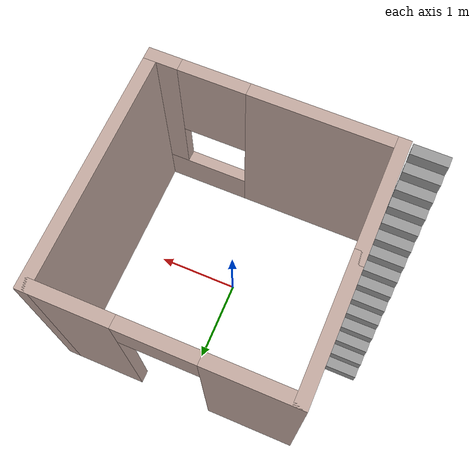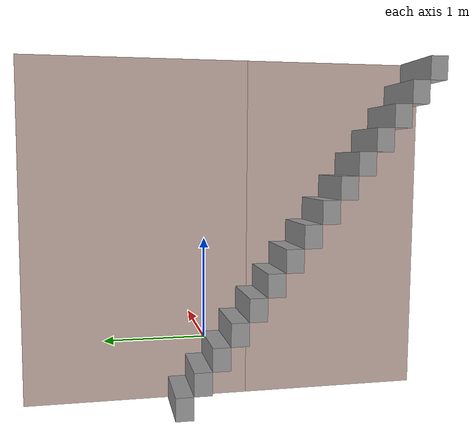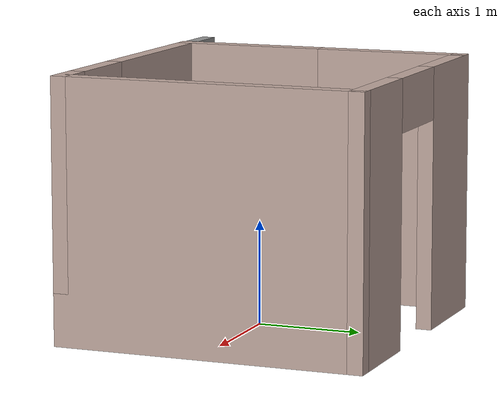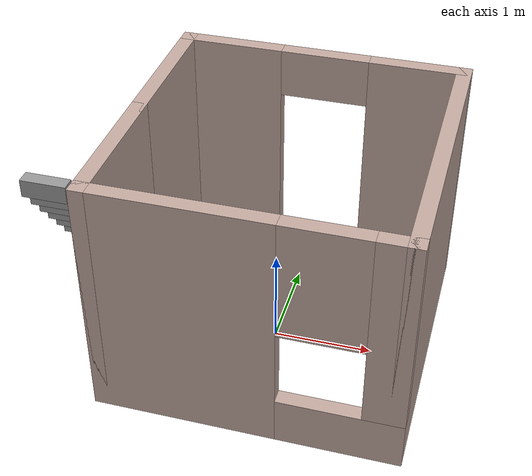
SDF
<?xml version='1.0'?>
<sdf version='1.7'>
  <model name='autonous2'>
    <pose>-0.152484 0.095 0 0 -0 0</pose>
    <link name='Stairs_0'>
      <visual name='Stairs_0_Visual_0'>
        <pose>-1.5086 0.386195 0.083333 0 -0 0</pose>
        <geometry>
          <box>
            <size>0.417769 0.128481 0.166667</size>
          </box>
        </geometry>
        <material>
          <script>
            <uri>file://media/materials/scripts/gazebo.material</uri>
            <name>Gazebo/Grey</name>
          </script>
          <ambient>1 1 1 1</ambient>
        </material>
        <meta>
          <layer>0</layer>
        </meta>
      </visual>
      <collision name='Stairs_0_Collision_0'>
        <geometry>
          <box>
            <size>0.417769 0.128481 0.166667</size>
          </box>
        </geometry>
        <pose>-1.5086 0.386195 0.083333 0 -0 0</pose>
      </collision>
      <visual name='Stairs_0_Visual_1'>
        <pose>-1.5086 0.257714 0.25 0 -0 0</pose>
        <geometry>
          <box>
            <size>0.417769 0.128481 0.166667</size>
          </box>
        </geometry>
        <material>
          <script>
            <uri>file://media/materials/scripts/gazebo.material</uri>
            <name>Gazebo/Grey</name>
          </script>
          <ambient>1 1 1 1</ambient>
        </material>
        <meta>
          <layer>0</layer>
        </meta>
      </visual>
      <collision name='Stairs_0_Collision_1'>
        <geometry>
          <box>
            <size>0.417769 0.128481 0.166667</size>
          </box>
        </geometry>
        <pose>-1.5086 0.257714 0.25 0 -0 0</pose>
      </collision>
      <visual name='Stairs_0_Visual_2'>
        <pose>-1.5086 0.129232 0.416667 0 -0 0</pose>
        <geometry>
          <box>
            <size>0.417769 0.128481 0.166667</size>
          </box>
        </geometry>
        <material>
          <script>
            <uri>file://media/materials/scripts/gazebo.material</uri>
            <name>Gazebo/Grey</name>
          </script>
          <ambient>1 1 1 1</ambient>
        </material>
        <meta>
          <layer>0</layer>
        </meta>
      </visual>
      <collision name='Stairs_0_Collision_2'>
        <geometry>
          <box>
            <size>0.417769 0.128481 0.166667</size>
          </box>
        </geometry>
        <pose>-1.5086 0.129232 0.416667 0 -0 0</pose>
      </collision>
      <visual name='Stairs_0_Visual_3'>
        <pose>-1.5086 0.000751 0.583333 0 -0 0</pose>
        <geometry>
          <box>
            <size>0.417769 0.128481 0.166667</size>
          </box>
        </geometry>
        <material>
          <script>
            <uri>file://media/materials/scripts/gazebo.material</uri>
            <name>Gazebo/Grey</name>
          </script>
          <ambient>1 1 1 1</ambient>
        </material>
        <meta>
          <layer>0</layer>
        </meta>
      </visual>
      <collision name='Stairs_0_Collision_3'>
        <geometry>
          <box>
            <size>0.417769 0.128481 0.166667</size>
          </box>
        </geometry>
        <pose>-1.5086 0.000751 0.583333 0 -0 0</pose>
      </collision>
      <visual name='Stairs_0_Visual_4'>
        <pose>-1.5086 -0.127731 0.75 0 -0 0</pose>
        <geometry>
          <box>
            <size>0.417769 0.128481 0.166667</size>
          </box>
        </geometry>
        <material>
          <script>
            <uri>file://media/materials/scripts/gazebo.material</uri>
            <name>Gazebo/Grey</name>
          </script>
          <ambient>1 1 1 1</ambient>
        </material>
        <meta>
          <layer>0</layer>
        </meta>
      </visual>
      <collision name='Stairs_0_Collision_4'>
        <geometry>
          <box>
            <size>0.417769 0.128481 0.166667</size>
          </box>
        </geometry>
        <pose>-1.5086 -0.127731 0.75 0 -0 0</pose>
      </collision>
      <visual name='Stairs_0_Visual_5'>
        <pose>-1.5086 -0.256212 0.916667 0 -0 0</pose>
        <geometry>
          <box>
            <size>0.417769 0.128481 0.166667</size>
          </box>
        </geometry>
        <material>
          <script>
            <uri>file://media/materials/scripts/gazebo.material</uri>
            <name>Gazebo/Grey</name>
          </script>
          <ambient>1 1 1 1</ambient>
        </material>
        <meta>
          <layer>0</layer>
        </meta>
      </visual>
      <collision name='Stairs_0_Collision_5'>
        <geometry>
          <box>
            <size>0.417769 0.128481 0.166667</size>
          </box>
        </geometry>
        <pose>-1.5086 -0.256212 0.916667 0 -0 0</pose>
      </collision>
      <visual name='Stairs_0_Visual_6'>
        <pose>-1.5086 -0.384693 1.08333 0 -0 0</pose>
        <geometry>
          <box>
            <size>0.417769 0.128481 0.166667</size>
          </box>
        </geometry>
        <material>
          <script>
            <uri>file://media/materials/scripts/gazebo.material</uri>
            <name>Gazebo/Grey</name>
          </script>
          <ambient>1 1 1 1</ambient>
        </material>
        <meta>
          <layer>0</layer>
        </meta>
      </visual>
      <collision name='Stairs_0_Collision_6'>
        <geometry>
          <box>
            <size>0.417769 0.128481 0.166667</size>
          </box>
        </geometry>
        <pose>-1.5086 -0.384693 1.08333 0 -0 0</pose>
      </collision>
      <visual name='Stairs_0_Visual_7'>
        <pose>-1.5086 -0.513175 1.25 0 -0 0</pose>
        <geometry>
          <box>
            <size>0.417769 0.128481 0.166667</size>
          </box>
        </geometry>
        <material>
          <script>
            <uri>file://media/materials/scripts/gazebo.material</uri>
            <name>Gazebo/Grey</name>
          </script>
          <ambient>1 1 1 1</ambient>
        </material>
        <meta>
          <layer>0</layer>
        </meta>
      </visual>
      <collision name='Stairs_0_Collision_7'>
        <geometry>
          <box>
            <size>0.417769 0.128481 0.166667</size>
          </box>
        </geometry>
        <pose>-1.5086 -0.513175 1.25 0 -0 0</pose>
      </collision>
      <visual name='Stairs_0_Visual_8'>
        <pose>-1.5086 -0.641656 1.41667 0 -0 0</pose>
        <geometry>
          <box>
            <size>0.417769 0.128481 0.166667</size>
          </box>
        </geometry>
        <material>
          <script>
            <uri>file://media/materials/scripts/gazebo.material</uri>
            <name>Gazebo/Grey</name>
          </script>
          <ambient>1 1 1 1</ambient>
        </material>
        <meta>
          <layer>0</layer>
        </meta>
      </visual>
      <collision name='Stairs_0_Collision_8'>
        <geometry>
          <box>
            <size>0.417769 0.128481 0.166667</size>
          </box>
        </geometry>
        <pose>-1.5086 -0.641656 1.41667 0 -0 0</pose>
      </collision>
      <visual name='Stairs_0_Visual_9'>
        <pose>-1.5086 -0.770138 1.58333 0 -0 0</pose>
        <geometry>
          <box>
            <size>0.417769 0.128481 0.166667</size>
          </box>
        </geometry>
        <material>
          <script>
            <uri>file://media/materials/scripts/gazebo.material</uri>
            <name>Gazebo/Grey</name>
          </script>
          <ambient>1 1 1 1</ambient>
        </material>
        <meta>
          <layer>0</layer>
        </meta>
      </visual>
      <collision name='Stairs_0_Collision_9'>
        <geometry>
          <box>
            <size>0.417769 0.128481 0.166667</size>
          </box>
        </geometry>
        <pose>-1.5086 -0.770138 1.58333 0 -0 0</pose>
      </collision>
      <visual name='Stairs_0_Visual_10'>
        <pose>-1.5086 -0.898619 1.75 0 -0 0</pose>
        <geometry>
          <box>
            <size>0.417769 0.128481 0.166667</size>
          </box>
        </geometry>
        <material>
          <script>
            <uri>file://media/materials/scripts/gazebo.material</uri>
            <name>Gazebo/Grey</name>
          </script>
          <ambient>1 1 1 1</ambient>
        </material>
        <meta>
          <layer>0</layer>
        </meta>
      </visual>
      <collision name='Stairs_0_Collision_10'>
        <geometry>
          <box>
            <size>0.417769 0.128481 0.166667</size>
          </box>
        </geometry>
        <pose>-1.5086 -0.898619 1.75 0 -0 0</pose>
      </collision>
      <visual name='Stairs_0_Visual_11'>
        <pose>-1.5086 -1.0271 1.91667 0 -0 0</pose>
        <geometry>
          <box>
            <size>0.417769 0.128481 0.166667</size>
          </box>
        </geometry>
        <material>
          <script>
            <uri>file://media/materials/scripts/gazebo.material</uri>
            <name>Gazebo/Grey</name>
          </script>
          <ambient>1 1 1 1</ambient>
        </material>
        <meta>
          <layer>0</layer>
        </meta>
      </visual>
      <collision name='Stairs_0_Collision_11'>
        <geometry>
          <box>
            <size>0.417769 0.128481 0.166667</size>
          </box>
        </geometry>
        <pose>-1.5086 -1.0271 1.91667 0 -0 0</pose>
      </collision>
      <visual name='Stairs_0_Visual_12'>
        <pose>-1.5086 -1.15558 2.08333 0 -0 0</pose>
        <geometry>
          <box>
            <size>0.417769 0.128481 0.166667</size>
          </box>
        </geometry>
        <material>
          <script>
            <uri>file://media/materials/scripts/gazebo.material</uri>
            <name>Gazebo/Grey</name>
          </script>
          <ambient>1 1 1 1</ambient>
        </material>
        <meta>
          <layer>0</layer>
        </meta>
      </visual>
      <collision name='Stairs_0_Collision_12'>
        <geometry>
          <box>
            <size>0.417769 0.128481 0.166667</size>
          </box>
        </geometry>
        <pose>-1.5086 -1.15558 2.08333 0 -0 0</pose>
      </collision>
      <visual name='Stairs_0_Visual_13'>
        <pose>-1.5086 -1.28406 2.25 0 -0 0</pose>
        <geometry>
          <box>
            <size>0.417769 0.128481 0.166667</size>
          </box>
        </geometry>
        <material>
          <script>
            <uri>file://media/materials/scripts/gazebo.material</uri>
            <name>Gazebo/Grey</name>
          </script>
          <ambient>1 1 1 1</ambient>
        </material>
        <meta>
          <layer>0</layer>
        </meta>
      </visual>
      <collision name='Stairs_0_Collision_13'>
        <geometry>
          <box>
            <size>0.417769 0.128481 0.166667</size>
          </box>
        </geometry>
        <pose>-1.5086 -1.28406 2.25 0 -0 0</pose>
      </collision>
      <visual name='Stairs_0_Visual_14'>
        <pose>-1.5086 -1.41254 2.41667 0 -0 0</pose>
        <geometry>
          <box>
            <size>0.417769 0.128481 0.166667</size>
          </box>
        </geometry>
        <material>
          <script>
            <uri>file://media/materials/scripts/gazebo.material</uri>
            <name>Gazebo/Grey</name>
          </script>
          <ambient>1 1 1 1</ambient>
        </material>
        <meta>
          <layer>0</layer>
        </meta>
      </visual>
      <collision name='Stairs_0_Collision_14'>
        <geometry>
          <box>
            <size>0.417769 0.128481 0.166667</size>
          </box>
        </geometry>
        <pose>-1.5086 -1.41254 2.41667 0 -0 0</pose>
      </collision>
    </link>
    <link name='Wall_5'>
      <collision name='Wall_5_Collision'>
        <geometry>
          <box>
            <size>1.5 0.15 2.5</size>
          </box>
        </geometry>
        <pose>0 0 1.25 0 -0 0</pose>
      </collision>
      <visual name='Wall_5_Visual'>
        <pose>0 0 1.25 0 -0 0</pose>
        <geometry>
          <box>
            <size>1.5 0.15 2.5</size>
          </box>
        </geometry>
        <material>
          <script>
            <uri>file://media/materials/scripts/gazebo.material</uri>
            <name>Gazebo/Grey</name>
          </script>
          <ambient>0.760784 0.662745 0.627451 1</ambient>
        </material>
        <meta>
          <layer>0</layer>
        </meta>
      </visual>
      <pose>-1.20752 -0.75 0 0 -0 -1.5708</pose>
    </link>
    <link name='Wall_6'>
      <pose>0.217484 -1.425 0 0 -0 0</pose>
      <visual name='Wall_6_Visual_0'>
        <pose>-0.599592 0 1.25 0 -0 0</pose>
        <geometry>
          <box>
            <size>1.80082 0.15 2.5</size>
          </box>
        </geometry>
        <material>
          <script>
            <uri>file://media/materials/scripts/gazebo.material</uri>
            <name>Gazebo/Grey</name>
          </script>
          <ambient>0.760784 0.662745 0.627451 1</ambient>
        </material>
        <meta>
          <layer>0</layer>
        </meta>
      </visual>
      <collision name='Wall_6_Collision_0'>
        <geometry>
          <box>
            <size>1.80082 0.15 2.5</size>
          </box>
        </geometry>
        <pose>-0.599592 0 1.25 0 -0 0</pose>
      </collision>
      <visual name='Wall_6_Visual_1'>
        <pose>0.900408 0 0.25 0 -0 0</pose>
        <geometry>
          <box>
            <size>1.19918 0.15 0.5</size>
          </box>
        </geometry>
        <material>
          <script>
            <uri>file://media/materials/scripts/gazebo.material</uri>
            <name>Gazebo/Grey</name>
          </script>
          <ambient>0.760784 0.662745 0.627451 1</ambient>
        </material>
        <meta>
          <layer>0</layer>
        </meta>
      </visual>
      <collision name='Wall_6_Collision_1'>
        <geometry>
          <box>
            <size>1.19918 0.15 0.5</size>
          </box>
        </geometry>
        <pose>0.900408 0 0.25 0 -0 0</pose>
      </collision>
      <visual name='Wall_6_Visual_2'>
        <pose>1.30041 0 1.5 0 -0 0</pose>
        <geometry>
          <box>
            <size>0.399184 0.15 2</size>
          </box>
        </geometry>
        <material>
          <script>
            <uri>file://media/materials/scripts/gazebo.material</uri>
            <name>Gazebo/Grey</name>
          </script>
          <ambient>0.760784 0.662745 0.627451 1</ambient>
        </material>
        <meta>
          <layer>0</layer>
        </meta>
      </visual>
      <collision name='Wall_6_Collision_2'>
        <geometry>
          <box>
            <size>0.399184 0.15 2</size>
          </box>
        </geometry>
        <pose>1.30041 0 1.5 0 -0 0</pose>
      </collision>
      <visual name='Wall_6_Visual_3'>
        <pose>0.700816 0 1.9 0 -0 0</pose>
        <geometry>
          <box>
            <size>0.8 0.15 1.2</size>
          </box>
        </geometry>
        <material>
          <script>
            <uri>file://media/materials/scripts/gazebo.material</uri>
            <name>Gazebo/Grey</name>
          </script>
          <ambient>0.760784 0.662745 0.627451 1</ambient>
        </material>
        <meta>
          <layer>0</layer>
        </meta>
      </visual>
      <collision name='Wall_6_Collision_3'>
        <geometry>
          <box>
            <size>0.8 0.15 1.2</size>
          </box>
        </geometry>
        <pose>0.700816 0 1.9 0 -0 0</pose>
      </collision>
    </link>
    <link name='Wall_7'>
      <collision name='Wall_7_Collision'>
        <geometry>
          <box>
            <size>3 0.15 2.5</size>
          </box>
        </geometry>
        <pose>0 0 1.25 0 -0 0</pose>
      </collision>
      <visual name='Wall_7_Visual'>
        <pose>0 0 1.25 0 -0 0</pose>
        <geometry>
          <box>
            <size>3 0.15 2.5</size>
          </box>
        </geometry>
        <material>
          <script>
            <uri>file://media/materials/scripts/gazebo.material</uri>
            <name>Gazebo/Grey</name>
          </script>
          <ambient>0.760784 0.662745 0.627451 1</ambient>
        </material>
        <meta>
          <layer>0</layer>
        </meta>
      </visual>
      <pose>1.64248 -0 0 0 -0 1.5708</pose>
    </link>
    <link name='Wall_8'>
      <pose>0.217484 1.425 0 0 -0 3.14159</pose>
      <visual name='Wall_8_Visual_0'>
        <pose>-0.992383 0 1.25 0 -0 0</pose>
        <geometry>
          <box>
            <size>1.01524 0.15 2.5</size>
          </box>
        </geometry>
        <material>
          <script>
            <uri>file://media/materials/scripts/gazebo.material</uri>
            <name>Gazebo/Grey</name>
          </script>
          <ambient>0.760784 0.662745 0.627451 1</ambient>
        </material>
        <meta>
          <layer>0</layer>
        </meta>
      </visual>
      <collision name='Wall_8_Collision_0'>
        <geometry>
          <box>
            <size>1.01524 0.15 2.5</size>
          </box>
        </geometry>
        <pose>-0.992383 0 1.25 0 -0 0</pose>
      </collision>
      <visual name='Wall_8_Visual_1'>
        <pose>0.957617 0 1.25 0 -0 0</pose>
        <geometry>
          <box>
            <size>1.08476 0.15 2.5</size>
          </box>
        </geometry>
        <material>
          <script>
            <uri>file://media/materials/scripts/gazebo.material</uri>
            <name>Gazebo/Grey</name>
          </script>
          <ambient>0.760784 0.662745 0.627451 1</ambient>
        </material>
        <meta>
          <layer>0</layer>
        </meta>
      </visual>
      <collision name='Wall_8_Collision_1'>
        <geometry>
          <box>
            <size>1.08476 0.15 2.5</size>
          </box>
        </geometry>
        <pose>0.957617 0 1.25 0 -0 0</pose>
      </collision>
      <visual name='Wall_8_Visual_2'>
        <pose>-0.034765 0 2.25 0 -0 0</pose>
        <geometry>
          <box>
            <size>0.9 0.15 0.5</size>
          </box>
        </geometry>
        <material>
          <script>
            <uri>file://media/materials/scripts/gazebo.material</uri>
            <name>Gazebo/Grey</name>
          </script>
          <ambient>0.760784 0.662745 0.627451 1</ambient>
        </material>
        <meta>
          <layer>0</layer>
        </meta>
      </visual>
      <collision name='Wall_8_Collision_2'>
        <geometry>
          <box>
            <size>0.9 0.15 0.5</size>
          </box>
        </geometry>
        <pose>-0.034765 0 2.25 0 -0 0</pose>
      </collision>
    </link>
    <link name='Wall_9'>
      <collision name='Wall_9_Collision'>
        <geometry>
          <box>
            <size>1.65 0.15 2.5</size>
          </box>
        </geometry>
        <pose>0 0 1.25 0 -0 0</pose>
      </collision>
      <visual name='Wall_9_Visual'>
        <pose>0 0 1.25 0 -0 0</pose>
        <geometry>
          <box>
            <size>1.65 0.15 2.5</size>
          </box>
        </geometry>
        <material>
          <script>
            <uri>file://media/materials/scripts/gazebo.material</uri>
            <name>Gazebo/Grey</name>
          </script>
          <ambient>0.760784 0.662745 0.627451 1</ambient>
        </material>
        <meta>
          <layer>0</layer>
        </meta>
      </visual>
      <pose>-1.20752 0.675 0 0 -0 -1.5708</pose>
    </link>
    <static>1</static>
  </model>
</sdf>
